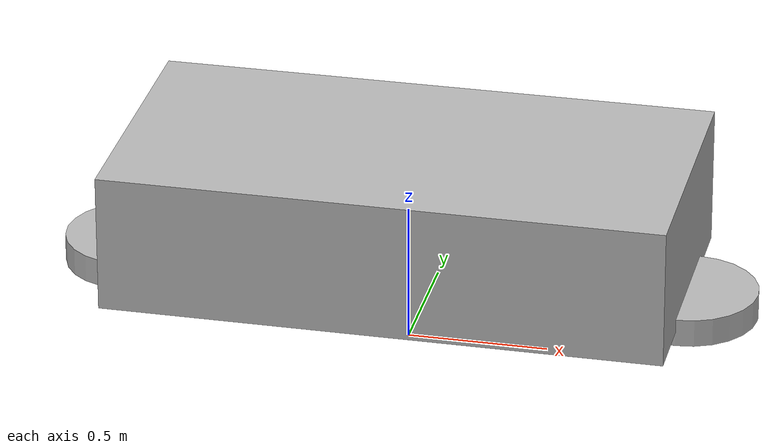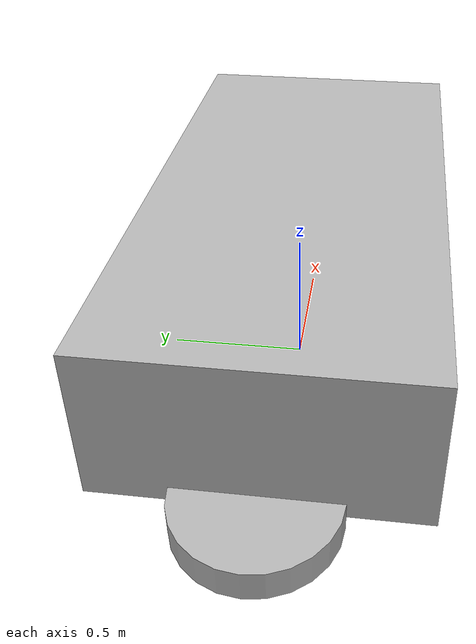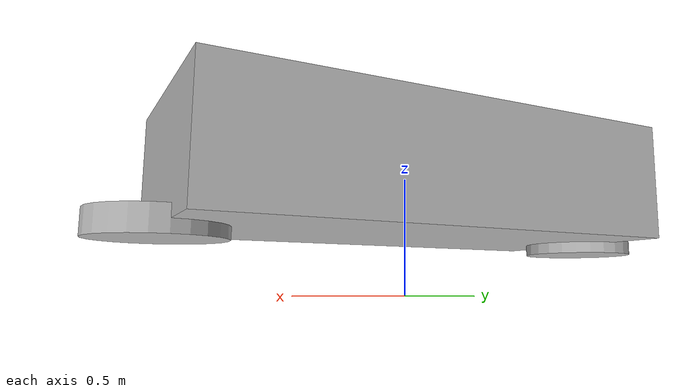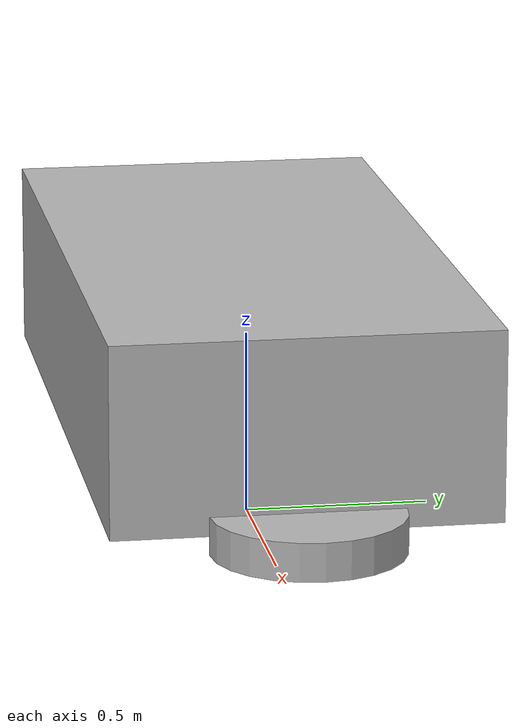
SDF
<sdf version="1.9">
  <model name="ackerman_car">
    <!-- Define the Ackerman steering car -->
    <link name="chassis">
      <!-- Chassis properties -->
      <pose>0 0 0.5 0 0 0</pose>
      <collision name="chassis_collision">
        <!-- Collision properties -->
        <geometry>
          <box>
            <size>2 1 0.5</size>
          </box>
        </geometry>
      </collision>
      <visual name="chassis_visual">
        <!-- Visual properties -->
        <geometry>
          <box>
            <size>2 1 0.5</size>
          </box>
        </geometry>
      </visual>
    </link>
    <joint name="front_axle" type="revolute">
      <!-- Front axle joint -->
      <child>front_wheel</child>
      <parent>chassis</parent>
      <pose>0 0 0 0 0 0</pose>
      <axis>
        <xyz>1 0 0</xyz>
      </axis>
    </joint>
    <link name="front_wheel">
      <!-- Front wheel properties -->
      <pose>1 0 0.25 0 0 0</pose>
      <collision name="front_wheel_collision">
        <!-- Collision properties -->
        <geometry>
          <cylinder>
            <radius>0.25</radius>
            <length>0.1</length>
          </cylinder>
        </geometry>
      </collision>
      <visual name="front_wheel_visual">
        <!-- Visual properties -->
        <geometry>
          <cylinder>
            <radius>0.25</radius>
            <length>0.1</length>
          </cylinder>
        </geometry>
      </visual>
    </link>
    <joint name="rear_axle" type="fixed">
      <!-- Rear axle joint -->
      <child>rear_wheel</child>
      <parent>chassis</parent>
      <pose>0 0 -0.25 0 0 0</pose>
    </joint>
    <link name="rear_wheel">
      <!-- Rear wheel properties -->
      <pose>-1 0 0.25 0 0 0</pose>
      <collision name="rear_wheel_collision">
        <!-- Collision properties -->
        <geometry>
          <cylinder>
            <radius>0.25</radius>
            <length>0.1</length>
          </cylinder>
        </geometry>
      </collision>
      <visual name="rear_wheel_visual">
        <!-- Visual properties -->
        <geometry>
          <cylinder>
            <radius>0.25</radius>
            <length>0.1</length>
          </cylinder>
        </geometry>
      </visual>
    </link>
    <!-- Lidar camera -->
    <gazebo reference="chassis">
      <!-- Gazebo properties -->
      <sensor name="lidar_sensor" type="ray">
        <!-- Lidar sensor -->
        <pose>0 0 1 0 0 0</pose>
        <visualize>true</visualize>
        <update_rate>10</update_rate>
        <ray>
          <scan>
            <horizontal>
              <!-- Horizontal scan -->
              <samples>720</samples>
              <resolution>1</resolution>
              <min_angle>-1.5708</min_angle>
              <max_angle>1.5708</max_angle>
            </horizontal>
          </scan>
          <range>
            <!-- Range properties -->
            <min>0.01</min>
            <max>10</max>
            <resolution>0.01</resolution>
          </range>
          <noise>
            <!-- Noise properties -->
            <type>gaussian</type>
            <mean>0</mean>
            <stddev>0.01</stddev>
          </noise>
        </ray>
        <plugin name="lidar_ros_plugin" filename="libackerman_lidar_plugin.so">
          <!-- Plugin to publish Lidar data -->
          <topic>lidar_topic</topic>
        </plugin>
      </sensor>
    </gazebo>
  </model>
</sdf>
